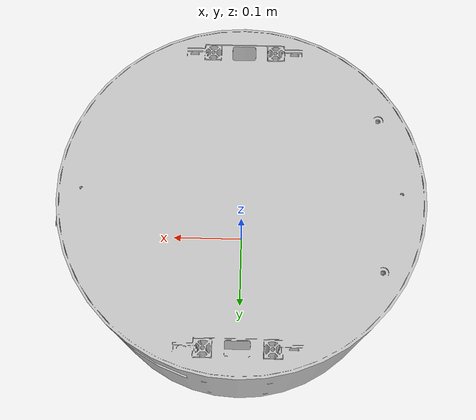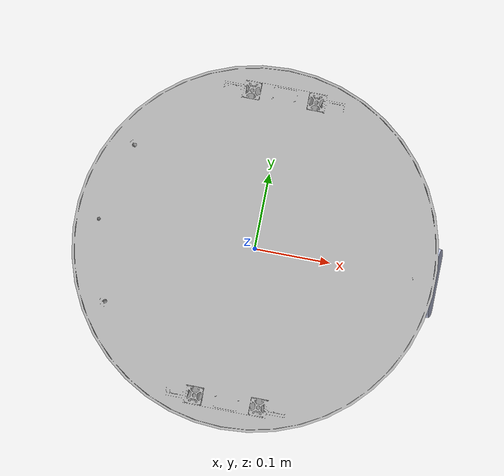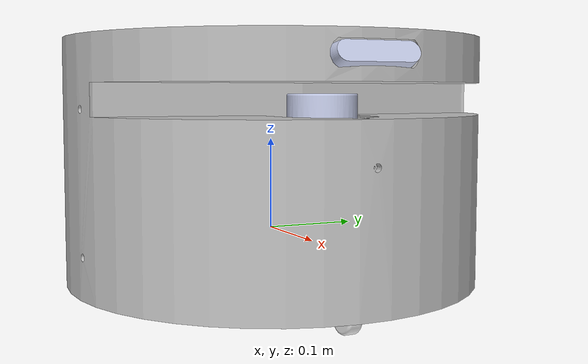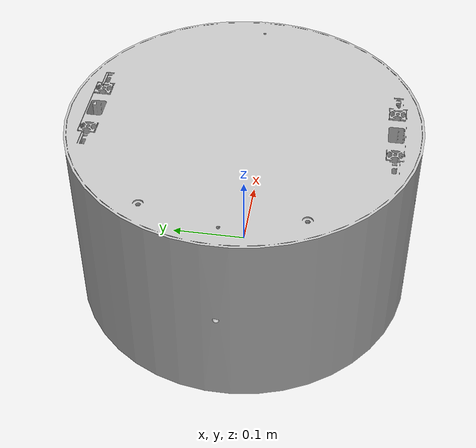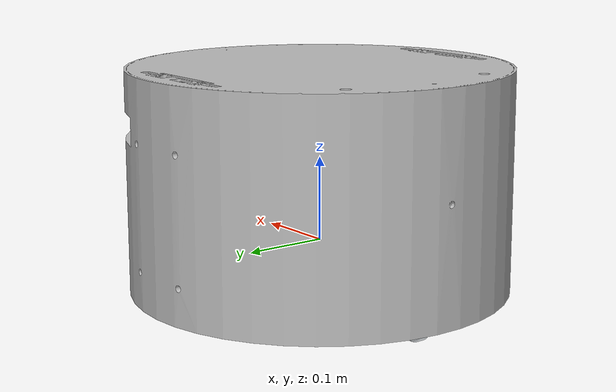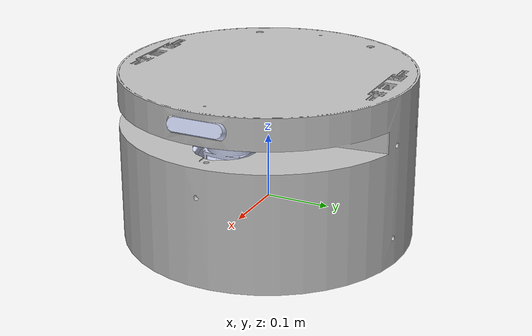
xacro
<?xml version="1.0"?>
<robot xmlns:xacro="http://www.ros.org/wiki/xacro"  name="robot">

    <xacro:arg name="use_ros2_control" default="true"/>

    <xacro:arg name="use_sim_time" default="false"/>

    <xacro:include filename="robot_core.xacro" />

    <xacro:if value="$(arg use_ros2_control)">
        <xacro:include filename="ros2_control.xacro" />
    </xacro:if>

    <xacro:unless value="$(arg use_ros2_control)">
        <xacro:include filename="gazebo_control.xacro" />
    </xacro:unless>

    <xacro:include filename="lidar.xacro" />

    <xacro:include filename="camera.xacro" />

</robot>

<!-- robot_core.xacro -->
<robot xmlns:xacro="http://www.ros.org/wiki/xacro" name="Robot_urdf">

  <link name="base_link">
  </link>

  <joint name="base_footprint_joint" type="fixed">
    <parent link="base_link" />
    <child link="base_footprint" />
    <origin xyz="0 0 -0.07928" rpy="0 0 0" />
  </joint>

  <link name="base_footprint">
  </link>

  <joint
    name="chassis_joint"
    type="fixed">
    <origin
      xyz="0 0 0"
      rpy="0 0 0" />
    <parent
      link="base_link" />
    <child
      link="chassis_link" />
    <axis
      xyz="0 0 0" />
  </joint>

  <link
    name="chassis_link">
    <visual>
      <origin
        xyz="0 0 0"
        rpy="0 0 0" />
      <geometry>
        <mesh
          filename="package://robot_description/meshes/base_link.STL" />
      </geometry>
      <material
        name="">
        <color
          rgba="0.752941176470588 0.752941176470588 0.752941176470588 1" />
      </material>
    </visual>
    <collision>
      <origin
        xyz="0 0 0"
        rpy="0 0 0" />
      <geometry>
        <mesh
          filename="package://robot_description/meshes/base_link.STL" />
      </geometry>
    </collision>
    <inertial>
      <origin
        xyz="0 0 0"
        rpy="0 0 0" />
      <mass
        value="11.80" />
      <inertia
        ixx="0.1666"
        ixy="0"
        ixz="0"
        iyy="0.1530"
        iyz="0"
        izz="0.3019" />
    </inertial>
  </link>

  <joint
    name="left_wheel_joint"
    type="continuous">
    <origin
      xyz="0 0.133 0"
      rpy="${pi/2} 0 0" />
    <parent
      link="base_link" />
    <child
      link="left_wheel" />
    <axis
      xyz="0 0 -1" />
  </joint>

  <link
    name="left_wheel">
    <visual>
      <origin
        xyz="0 0 0"
        rpy="0 0 0" />
      <geometry>
        <mesh
          filename="package://robot_description/meshes/wheel_left_link.STL" />
      </geometry>
      <material
        name="">
        <color
          rgba="0.792156862745098 0.819607843137255 0.933333333333333 1" />
      </material>
    </visual>
    <collision>
      <origin
        xyz="0 0 0"
        rpy="0 0 0" />
      <geometry>
        <mesh
          filename="package://robot_description/meshes/wheel_left_link.STL" />
      </geometry>
    </collision>
    <inertial>
      <origin
        xyz="0 0 0"
        rpy="0 0 0" />
      <mass
        value="0.9580" />
      <inertia
        ixx="0.001585"
        ixy="0"
        ixz="0"
        iyy="0.001585"
        iyz="0"
        izz="0.0027" />
    </inertial>
  </link>

  <joint
    name="right_wheel_joint"
    type="continuous">
    <origin
      xyz="0 -0.133 0"
      rpy="${pi/2} 0 0" />
    <parent
      link="base_link" />
    <child
      link="right_wheel" />
    <axis
      xyz="0 0 -1" />
  </joint>

  <link
    name="right_wheel">
    <visual>
      <origin
        xyz="0 0 0"
        rpy="0 0 0" />
      <geometry>
        <mesh
          filename="package://robot_description/meshes/wheel_right_link.STL" />
      </geometry>
      <material
        name="">
        <color
          rgba="0.792156862745098 0.819607843137255 0.933333333333333 1" />
      </material>
    </visual>
    <collision>
      <origin
        xyz="0 0 0"
        rpy="0 0 0" />
      <geometry>
        <mesh
          filename="package://robot_description/meshes/wheel_right_link.STL" />
      </geometry>
    </collision>
    <inertial>
      <origin
        xyz="0 0 0"
        rpy="0 0 0" />
        <mass
        value="0.9580" />
      <inertia
        ixx="0.001585"
        ixy="0"
        ixz="0"
        iyy="0.001585"
        iyz="0"
        izz="0.0027" />
    </inertial>
  </link>

  <link
    name="caster_front_link">
    <inertial>
      <origin
        xyz="-0.00472870564137723 -0.000242223123215923 0.0282940881515238"
        rpy="0 0 0" />
      <mass
        value="0.0310665024207565" />
      <inertia
        ixx="3.53673645010852E-06"
        ixy="0"
        ixz="0"
        iyy="5.15981170647996E-06"
        iyz="0"
        izz="4.97093525481061E-06" />
    </inertial>
    <visual>
      <origin
        xyz="0 0 0"
        rpy="0 0 0" />
      <geometry>
        <mesh
          filename="package://robot_description/meshes/caster_front_link.STL" />
      </geometry>
      <material
        name="">
        <color
          rgba="1 1 1 1" />
      </material>
    </visual>
    <collision>
      <origin
        xyz="0 0 0"
        rpy="0 0 0" />
      <geometry>
        <mesh
          filename="package://robot_description/meshes/caster_front_link.STL" />
      </geometry>
    </collision>
  </link>
  <joint
    name="caster_front_joint"
    type="fixed">
    <origin
      xyz="0.170163733946607 0.0010384465314523 -0.079269999999999"
      rpy="0 0 -0.00139253703007873" />
    <parent
      link="base_link" />
    <child
      link="caster_front_link" />
    <axis
      xyz="0 0 0" />
  </joint>
  <link
    name="caster_rear_link">
    <inertial>
      <origin
        xyz="0.00472870564137717 0.000242223123215757 0.0282940881515238"
        rpy="0 0 0" />
      <mass
        value="0.0310665024207566" />
      <inertia
        ixx="3.53673645010853E-06"
        ixy="0"
        ixz="0"
        iyy="5.15981170647996E-06"
        iyz="0"
        izz="4.97093525481061E-06" />
    </inertial>
    <visual>
      <origin
        xyz="0 0 0"
        rpy="0 0 0" />
      <geometry>
        <mesh
          filename="package://robot_description/meshes/caster_rear_link.STL" />
      </geometry>
      <material
        name="">
        <color
          rgba="0.898039215686275 0.917647058823529 0.929411764705882 1" />
      </material>
    </visual>
    <collision>
      <origin
        xyz="0 0 0"
        rpy="0 0 0" />
      <geometry>
        <mesh
          filename="package://robot_description/meshes/caster_rear_link.STL" />
      </geometry>
    </collision>
  </link>
  <joint
    name="caster_rear_joint"
    type="fixed">
    <origin
      xyz="-0.170163733946223 -0.00103844653145024 -0.079269999999999"
      rpy="0 0 -0.00139253703007873" />
    <parent
      link="base_link" />
    <child
      link="caster_rear_link" />
    <axis
      xyz="0 0 0" />
  </joint>

</robot>

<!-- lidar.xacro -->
<robot xmlns:xacro="http://www.ros.org/wiki/xacro">

  <joint
    name="rplidar_joint"
    type="fixed">
    <origin
      xyz="0.120 0 0.15"
      rpy="0 0 0" />
    <parent
      link="base_link" />
    <child
      link="laser_frame" />
    <axis
      xyz="0 0 0" />
  </joint>

  <link
    name="laser_frame">
    <visual>
      <origin
        xyz="0 0 0"
        rpy="0 0 0" />
      <geometry>
        <mesh
          filename="package://robot_description/meshes/lidar_link.STL" />
      </geometry>
      <material
        name="">
        <color
          rgba="0.792156862745098 0.819607843137255 0.933333333333333 1" />
      </material>
    </visual>
    <collision>
      <origin
        xyz="0 0 0"
        rpy="0 0 0" />
      <geometry>
        <mesh
          filename="package://robot_description/meshes/lidar_link.STL" />
      </geometry>
    </collision>
    <inertial>
      <origin
        xyz="-0.0067635419809998 0.000221088445804818 -0.0224318722671598"
        rpy="0 0 0" />
      <mass
        value="1.33076913637071" />
      <inertia
        ixx="0.000615013348333936"
        ixy="5.79863390554595E-06"
        ixz="-0.000158155164520931"
        iyy="0.00096060192773738"
        iyz="6.11206676240812E-06"
        izz="0.00109815200027136" />
    </inertial>
  </link>

  <gazebo reference="laser_frame">
    <material>Gazebo/Black</material>
    <sensor name="laser" type="ray">
      <pose> 0 0 0 0 0 0 </pose>
      <visualize>false</visualize>
      <update_rate>20</update_rate>
      <ray>
        <scan>
          <horizontal>
            <samples>180</samples>
            <min_angle>-1.57</min_angle>
            <max_angle>1.57</max_angle>
          </horizontal>
        </scan>
        <range>
          <min>0.3</min>
          <max>12</max>
        </range>
      </ray>
      <always_on>true</always_on>
      <visualize>true</visualize>
      <plugin name="laser_controller" filename="libgazebo_ros_ray_sensor.so">
        <ros>
          <argument>~/out:=scan</argument>
        </ros>
        <output_type>sensor_msgs/LaserScan</output_type>
        <frame_name>laser_frame</frame_name>
      </plugin>
    </sensor>
  </gazebo>

</robot>

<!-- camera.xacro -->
<robot xmlns:xacro="http://www.ros.org/wiki/xacro"  >

  <joint
    name="camera_joint"
    type="fixed">
    <origin
      xyz="0.225991970859828 0.00241850523536796 0.187206110781178"
      rpy="0 -0.310050748556676 -0.00139253703008045" />
    <parent
      link="base_link" />
    <child
      link="camera_link" />
    <axis
      xyz="0 0 0" />
  </joint>

  <link
    name="camera_link">
    <visual>
      <origin
        xyz="0 0 0"
        rpy="0 0 0" />
      <geometry>
        <mesh
        filename="package://robot_description/meshes/camera_link.STL" />
      </geometry>
      <material
        name="">
        <color
          rgba="0.792156862745098 0.819607843137255 0.933333333333333 1" />
      </material>
    </visual>
    <collision>
      <origin
      xyz="0 0 0"
      rpy="0 0 0" />
      <geometry>
        <mesh
          filename="package://robot_description/meshes/camera_link.STL" />
      </geometry>
    </collision>
  </link>

<joint name="camera_optical_joint" type="fixed">
        <parent link="camera_link"/>
        <child link="camera_link_optical"/>
        <origin xyz="0 0 0" rpy="${-pi/2} 0 ${-pi/2}"/>
</joint>

<link name="camera_link_optical"></link>

  <gazebo reference="camera_link">
      <material>Gazebo/Gray</material>

      <sensor name="camera" type="depth">
          <pose> 0 0 0 0 0 0 </pose>
          <visualize>true</visualize>
          <update_rate>10</update_rate>
          <camera>
              <horizontal_fov>1.089</horizontal_fov>
              <image>
                  <format>R8G8B8</format>
                  <width>640</width>
                  <height>480</height>
              </image>
              <clip>
                  <near>0.05</near>
                  <far>8.0</far>
              </clip>
          </camera>
          <plugin name="camera_controller" filename="libgazebo_ros_camera.so">
              <frame_name>camera_link_optical</frame_name>
              <min_depth>0.1</min_depth>
              <max_depth>100.0</max_depth>
          </plugin>
      </sensor>
  </gazebo>

</robot>
